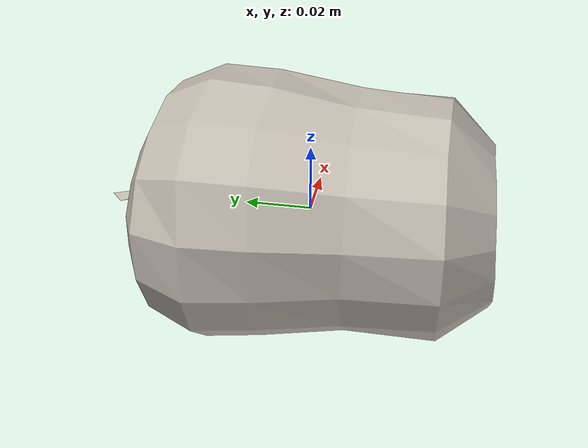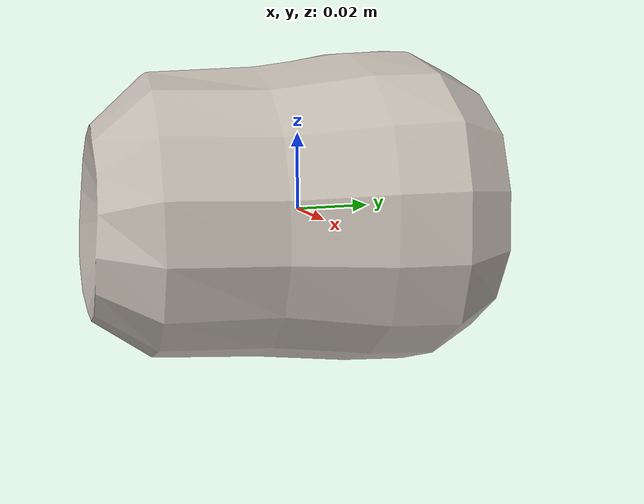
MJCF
<mujoco model="Apple_13">
  <compiler autolimits="true" boundmass="0.01" angle="radian"/>
  <default>
    <default class="/">
      <default class="__VISUAL_MJT__">
        <geom contype="0" conaffinity="0" group="0"/>
      </default>
      <default class="__STRUCTURAL_MJT__">
        <geom contype="8" conaffinity="15" group="4" friction="0.90000000000000002 0.90000000000000002 0.001" solref="0.025000000000000001 1" solimp="0.998 0.998 0.001"/>
      </default>
      <default class="__DYNAMIC_MJT__">
        <geom contype="1" conaffinity="15" group="4" friction="0.90000000000000002 0.90000000000000002 0.001" solref="0.025000000000000001 1" solimp="0.998 0.998 0.001"/>
      </default>
    </default>
  </default>
  <asset>
    <texture name="Apple1_Mat5" type="2d" file="Apple1_AlbedoTransparency5.png"/>
    <material name="material_Apple1_Mat5" class="/" texture="Apple1_Mat5" specular="0.5" shininess="0.5" rgba="1 1 1 1"/>
    <mesh name="Apple_13_apple_a13" class="/" file="Apple_13_apple_a13/Apple_13_apple_a13.obj" scale="1 1 1"/>
  </asset>
  <worldbody>
    <body name="Apple_13">
      <joint name="Apple_13_free" class="/" type="free" pos="0 0 0" axis="0 0 1" stiffness="0" range="0 0" armature="0" damping="0.10000000000000001" frictionloss="0"/>
      <body name="Apple_13_apple_a13" pos="-0 -0.0047999999999999996 0" quat="1 0 0 0">
        <geom name="Apple_13_apple_a13" class="__VISUAL_MJT__" type="mesh" material="material_Apple1_Mat5" shellinertia="false" mesh="Apple_13_apple_a13"/>
        <geom name="Apple_13_PrimitiveCollider_0" class="__DYNAMIC_MJT__" type="capsule" size="0.044586628675460815 0.016596876084804535" rgba="0 1 0 1" pos="-0 0.0047963559627532959 0" quat="0.70710678118654757 0.70710678118654746 0 0"/>
      </body>
    </body>
  </worldbody>
</mujoco>
